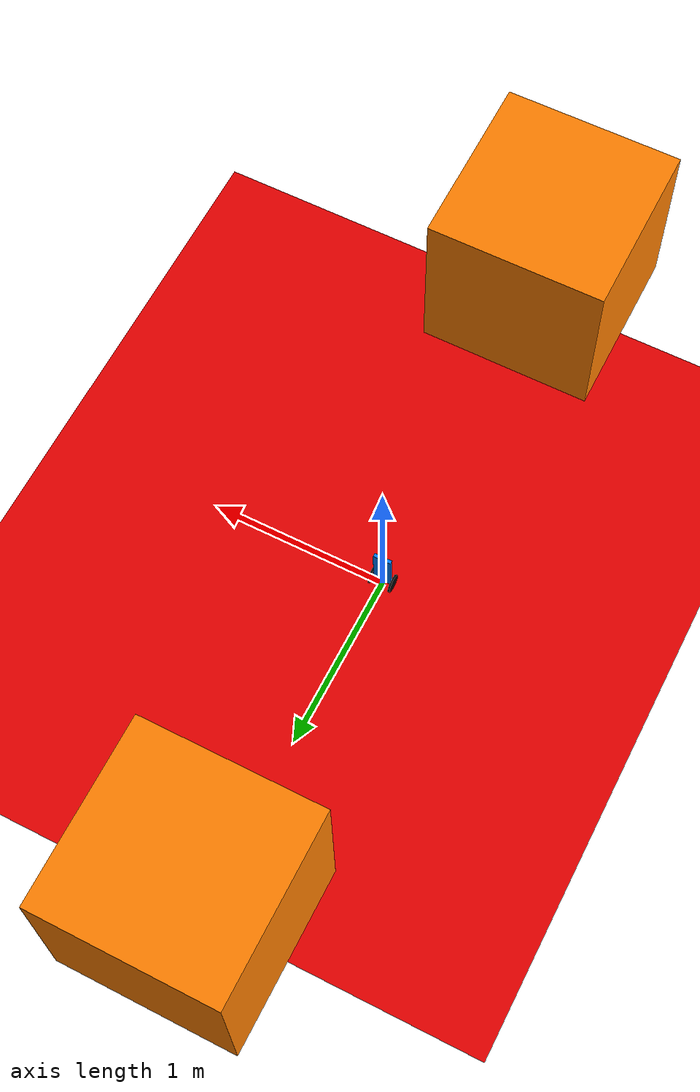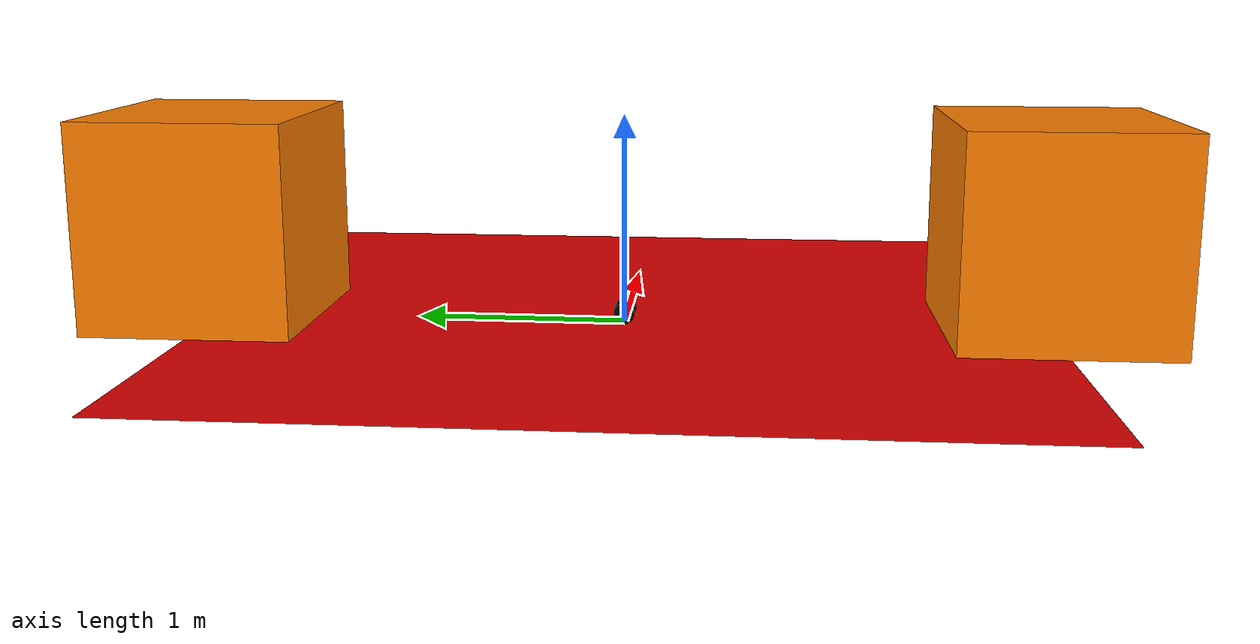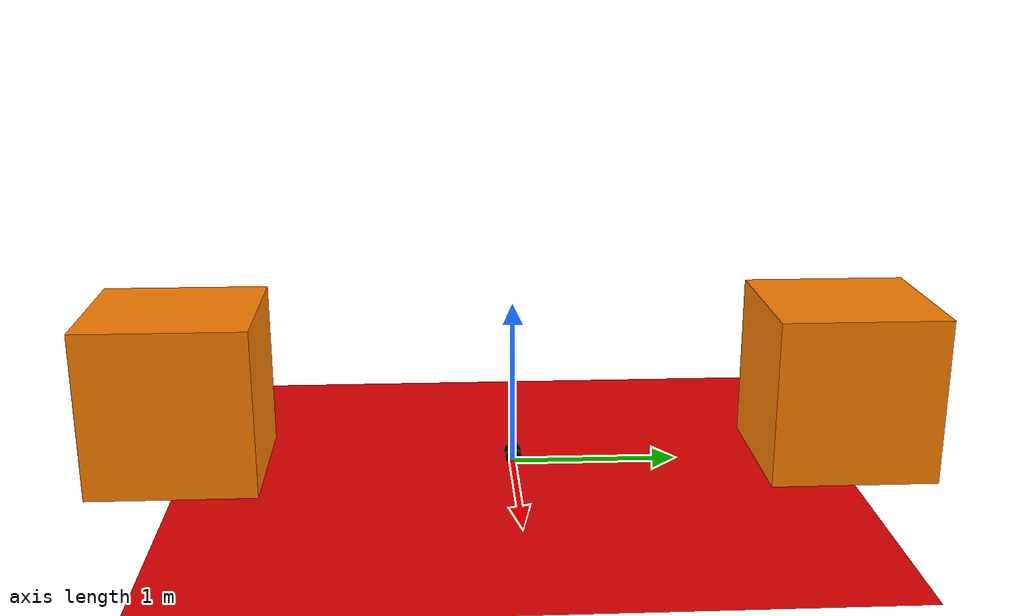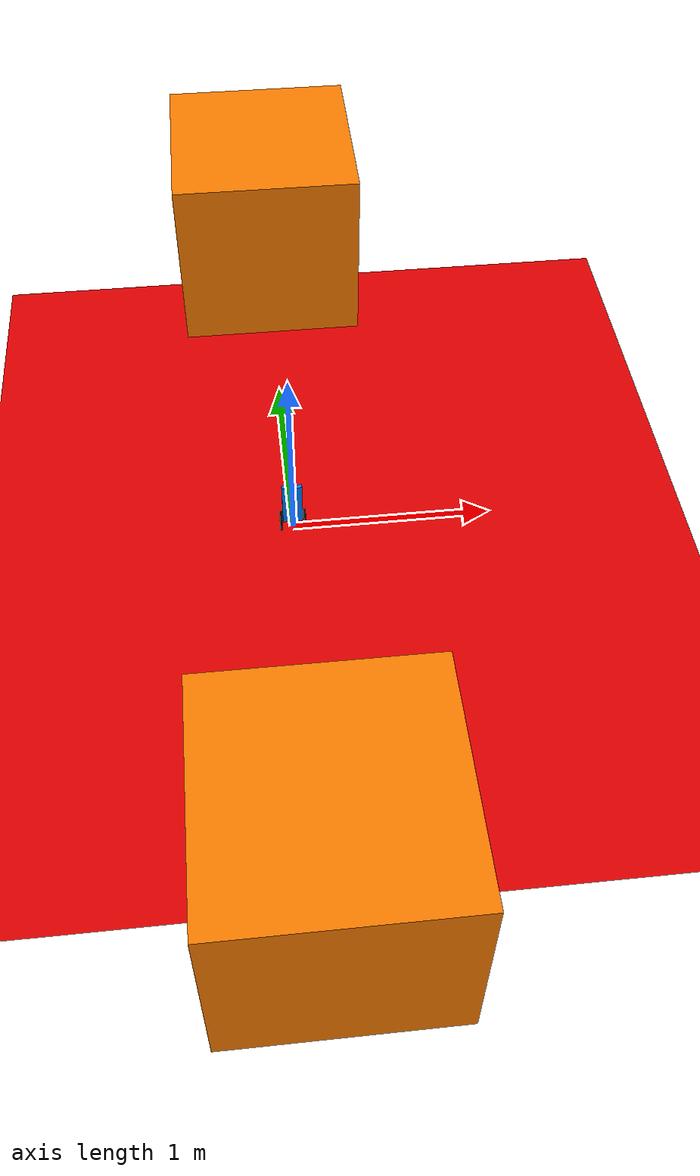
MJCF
<mujoco>
    <option timestep="0.001" integrator="RK4">
        <flag energy="enable" contact="enable"/>
    </option>
    <default>
        <geom friction="1 0.005 0.0001"/>
    </default>
    <worldbody>
        <light diffuse=".5 .5 .5" pos="0 1 3" dir="0 -0.1 -1"/>
        <geom type="plane" size="2 2 0.1" rgba=".9 0 0 1" condim="3"/>
        <!-- Root body for planar movement -->
        <body name="cart" pos="0 0 0.15">
            <joint name="cart_x" type="slide" axis="1 0 0" pos="0 0 0"/>
            <joint name="cart_y" type="slide" axis="0 1 0" pos="0 0 0"/>
            <joint name="cart_yaw" type="hinge" axis="0 0 1" pos="0 0 0"/>
            <joint name="cart_pitch" type="hinge" axis="1 0 0" pos="0 0 -0.1"/>
            <!-- Pendulum block (main body) -->
            <body name="pendulum" pos="0 0 0.025">
                <geom type="box" size="0.05 0.01 0.125" rgba="0 0.5 1 1" mass="0.5"/>
                <!-- Left wheel attached to pendulum -->
                <body name="left_wheel" pos="-0.06 0 -0.125" euler="0 90 0">
                    <joint name="left_wheel_hinge" type="hinge" axis="0 0 -1" pos="0 0 0"/>
                    <geom type="cylinder" size="0.05 0.005" rgba="0 0 0 1" mass="0.01" friction="1 0.005 0.0001" condim="3"/>
                </body>
                <!-- Right wheel attached to pendulum -->
                <body name="right_wheel" pos="0.06 0 -0.125" euler="0 90 0">
                    <joint name="right_wheel_hinge" type="hinge" axis="0 0 1" pos="0 0 0"/>
                    <geom type="cylinder" size="0.05 0.005" rgba="0 0 0 1" mass="0.01" friction="1 0.005 0.0001" condim="3"/>
                </body>
            </body>
        </body>
        <body name="blockYpos" pos="0 2 0">
            <geom type="box" size="0.5 0.5 0.5" pos="0 0 0.5" rgba="1 0.5 0 1" mass="5"/>
        </body>
        <body name="blockYneg" pos="0 -2 0">
            <geom type="box" size="0.5 0.5 0.5" pos="0 0 0.5" rgba="1 0.5 0 1" mass="5"/>
        </body>
    </worldbody>
    <actuator>
        <motor joint="left_wheel_hinge" name="left_motor" gear="1" ctrllimited="true" ctrlrange="-10 10"/>
        <motor joint="right_wheel_hinge" name="right_motor" gear="1" ctrllimited="true" ctrlrange="-10 10"/>
    </actuator>
    <sensor>
        <jointpos name="cart_pitch_pos" joint="cart_pitch"/>
        <jointvel name="cart_pitch_vel" joint="cart_pitch"/>
        <jointpos name="left_wheel_pos" joint="left_wheel_hinge"/>
        <jointvel name="left_wheel_vel" joint="left_wheel_hinge"/>
        <jointpos name="right_wheel_pos" joint="right_wheel_hinge"/>
        <jointvel name="right_wheel_vel" joint="right_wheel_hinge"/>
    </sensor>
</mujoco>
